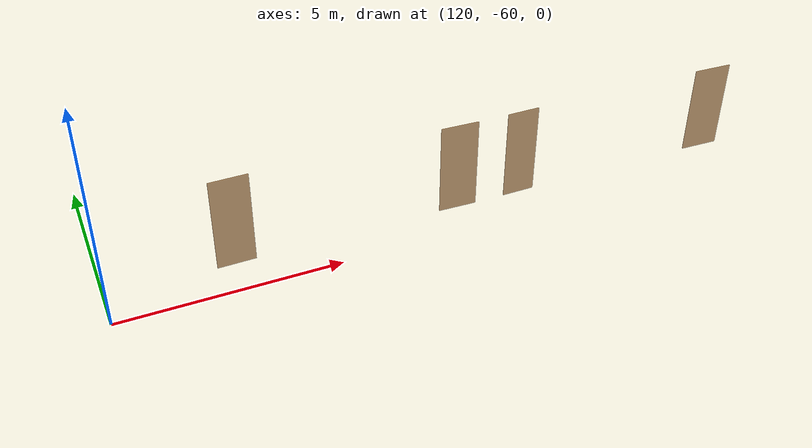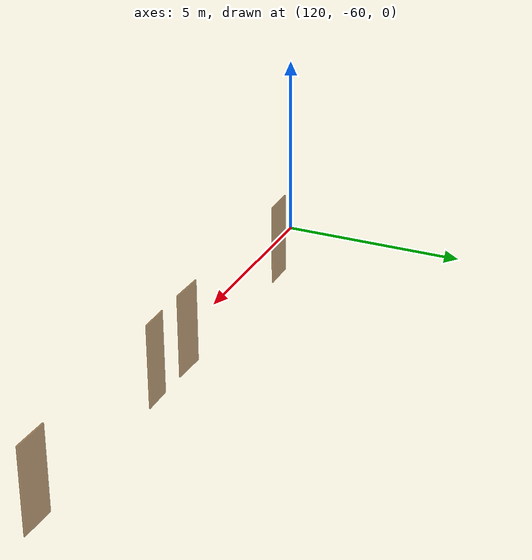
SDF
<sdf version="1.7">
 <world name="sim_world">
  <model name="puerta139">
   <pose>122.86968979169379 -59.09636526575757 0.0 0 0 -3.1235437301464053</pose>
   <link name="right">
    <pose>0 0 1.11 0 0 0</pose>
    <visual name="right_visual">
     <geometry><box><size>0.8781911491237782 0.03 2.2</size></box></geometry>
     <material>
      <ambient>0.5 0.25 0 0.6</ambient>
      <diffuse>0.5 0.25 0 0.6</diffuse>
      <pbr><metal><metalness>0.0</metalness></metal></pbr>
     </material>
    </visual>
    <collision name="right_collision">
     <geometry><box><size>0.8781911491237782 0.03 2.2</size></box></geometry>
     <surface><contact><collide_bitmask>0x02</collide_bitmask></contact></surface>
    </collision>
    <inertial>
     <mass>50.0</mass>
     <inertia><ixx>20.17041666666667</ixx><iyy>23.380082059997264</iyy><izz>3.217165393330592</izz></inertia>
    </inertial>
   </link>
   <joint name="right_joint" type="revolute">
    <parent>world</parent>
    <child>right</child>
    <axis><xyz>0 0 1</xyz><limit><lower>0</lower><upper>1.57</upper></limit></axis>
    <pose>0.4440955745618891 0 0 0 0 0</pose>
   </joint>
   <plugin name="register_component" filename="libregister_component.so">
    <component name="Door">
     <v_max_door>0.5</v_max_door>
     <a_max_door>0.3</a_max_door>
     <a_nom_door>0.15</a_nom_door>
     <dx_min_door>0.01</dx_min_door>
     <f_max_door>500.0</f_max_door>
     <ros_interface>true</ros_interface>
     <door name="puerta139" type="SwingDoor" left_joint_name="empty_joint" right_joint_name="right_joint"/>
    </component>
   </plugin>
  </model>
  <model name="puerta140">
   <pose>128.2026178164667 -59.10198208508112 0.0 0 0 -0.029432661171258447</pose>
   <link name="right">
    <pose>0 0 1.11 0 0 0</pose>
    <visual name="right_visual">
     <geometry><box><size>0.9164401512417065 0.03 2.2</size></box></geometry>
     <material>
      <ambient>0.5 0.25 0 0.6</ambient>
      <diffuse>0.5 0.25 0 0.6</diffuse>
      <pbr><metal><metalness>0.0</metalness></metal></pbr>
     </material>
    </visual>
    <collision name="right_collision">
     <geometry><box><size>0.9164401512417065 0.03 2.2</size></box></geometry>
     <surface><contact><collide_bitmask>0x02</collide_bitmask></contact></surface>
    </collision>
    <inertial>
     <mass>50.0</mass>
     <inertia><ixx>20.17041666666667</ixx><iyy>23.66609396169968</iyy><izz>3.5031772950330082</izz></inertia>
    </inertial>
   </link>
   <joint name="right_joint" type="revolute">
    <parent>world</parent>
    <child>right</child>
    <axis><xyz>0 0 -1</xyz><limit><lower>0</lower><upper>1.57</upper></limit></axis>
    <pose>0.46322007562085327 0 0 0 0 0</pose>
   </joint>
   <plugin name="register_component" filename="libregister_component.so">
    <component name="Door">
     <v_max_door>0.5</v_max_door>
     <a_max_door>0.3</a_max_door>
     <a_nom_door>0.15</a_nom_door>
     <dx_min_door>0.01</dx_min_door>
     <f_max_door>500.0</f_max_door>
     <ros_interface>true</ros_interface>
     <door name="puerta140" type="SwingDoor" left_joint_name="empty_joint" right_joint_name="right_joint"/>
    </component>
   </plugin>
  </model>
  <model name="puerta143">
   <pose>129.8163699779955 -59.10879800066474 0.0 0 0 -3.1246282655689597</pose>
   <link name="right">
    <pose>0 0 1.11 0 0 0</pose>
    <visual name="right_visual">
     <geometry><box><size>0.7935942719706183 0.03 2.2</size></box></geometry>
     <material>
      <ambient>0.5 0.25 0 0.6</ambient>
      <diffuse>0.5 0.25 0 0.6</diffuse>
      <pbr><metal><metalness>0.0</metalness></metal></pbr>
     </material>
    </visual>
    <collision name="right_collision">
     <geometry><box><size>0.7935942719706183 0.03 2.2</size></box></geometry>
     <surface><contact><collide_bitmask>0x02</collide_bitmask></contact></surface>
    </collision>
    <inertial>
     <mass>50.0</mass>
     <inertia><ixx>20.17041666666667</ixx><iyy>22.790799452102405</iyy><izz>2.6278827854357325</izz></inertia>
    </inertial>
   </link>
   <joint name="right_joint" type="revolute">
    <parent>world</parent>
    <child>right</child>
    <axis><xyz>0 0 1</xyz><limit><lower>0</lower><upper>1.57</upper></limit></axis>
    <pose>0.40179713598530914 0 0 0 0 0</pose>
   </joint>
   <plugin name="register_component" filename="libregister_component.so">
    <component name="Door">
     <v_max_door>0.5</v_max_door>
     <a_max_door>0.3</a_max_door>
     <a_nom_door>0.15</a_nom_door>
     <dx_min_door>0.01</dx_min_door>
     <f_max_door>500.0</f_max_door>
     <ros_interface>true</ros_interface>
     <door name="puerta143" type="SwingDoor" left_joint_name="empty_joint" right_joint_name="right_joint"/>
    </component>
   </plugin>
  </model>
  <model name="puerta144">
   <pose>135.1206038396324 -59.115592879471876 0.0 0 0 -0.027756343919965544</pose>
   <link name="right">
    <pose>0 0 1.11 0 0 0</pose>
    <visual name="right_visual">
     <geometry><box><size>0.970859888916426 0.03 2.2</size></box></geometry>
     <material>
      <ambient>0.5 0.25 0 0.6</ambient>
      <diffuse>0.5 0.25 0 0.6</diffuse>
      <pbr><metal><metalness>0.0</metalness></metal></pbr>
     </material>
    </visual>
    <collision name="right_collision">
     <geometry><box><size>0.970859888916426 0.03 2.2</size></box></geometry>
     <surface><contact><collide_bitmask>0x02</collide_bitmask></contact></surface>
    </collision>
    <inertial>
     <mass>50.0</mass>
     <inertia><ixx>20.17041666666667</ixx><iyy>24.094037182945065</iyy><izz>3.931120516278397</izz></inertia>
    </inertial>
   </link>
   <joint name="right_joint" type="revolute">
    <parent>world</parent>
    <child>right</child>
    <axis><xyz>0 0 -1</xyz><limit><lower>0</lower><upper>1.57</upper></limit></axis>
    <pose>0.49042994445821303 0 0 0 0 0</pose>
   </joint>
   <plugin name="register_component" filename="libregister_component.so">
    <component name="Door">
     <v_max_door>0.5</v_max_door>
     <a_max_door>0.3</a_max_door>
     <a_nom_door>0.15</a_nom_door>
     <dx_min_door>0.01</dx_min_door>
     <f_max_door>500.0</f_max_door>
     <ros_interface>true</ros_interface>
     <door name="puerta144" type="SwingDoor" left_joint_name="empty_joint" right_joint_name="right_joint"/>
    </component>
   </plugin>
  </model>
 </world>
</sdf>
